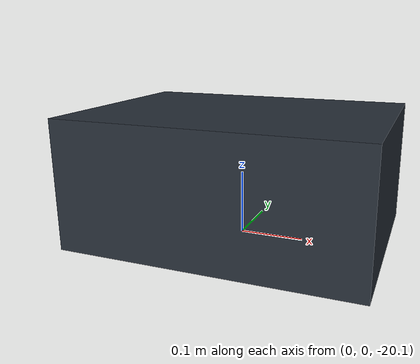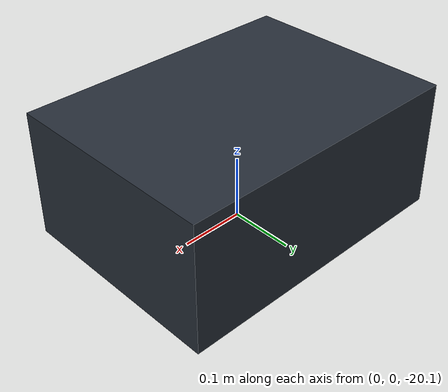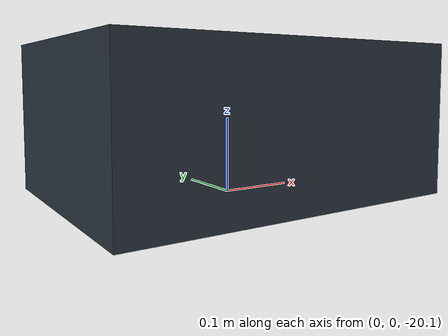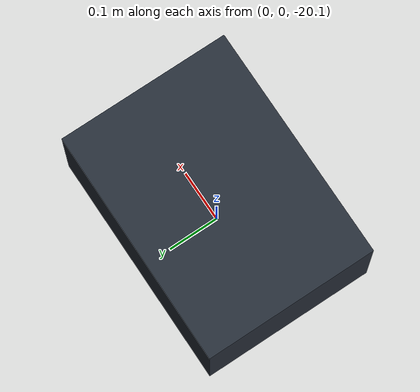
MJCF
<mujoco model="bluerov2_ned">
  <option timestep="0.002" gravity="0 0 9.81" integrator="implicitfast"
          density="0" viscosity="0"/>

  <visual>
    <headlight ambient="0.4 0.4 0.4" diffuse="0.6 0.6 0.6"/>
  </visual>

  <worldbody>
    <body name="base_link" pos="0 0 -20">
      <freejoint name="free"/>
      <inertial pos="0 0 0.02" mass="11.26" diaginertia="0.3 0.63 0.58"/>
      <geom name="frame" type="box" size="0.229 0.1675 0.10"
            rgba="0.15 0.18 0.22 1" contype="0" conaffinity="0"/>
      <geom name="enclosure" type="cylinder" size="0.06 0.16" pos="0 0 -0.06"
            quat="0.7071 0 0.7071 0" rgba="0.85 0.85 0.2 1"
            contype="0" conaffinity="0"/>
      <!-- thruster markers (cosmetic; forces are applied analytically) -->
      <site name="thr1" pos="0.156 0.111 0.072" size="0.02" rgba="0 0.8 0 1"/>
      <site name="thr2" pos="0.156 -0.111 0.072" size="0.02" rgba="0 0.8 0 1"/>
      <site name="thr3" pos="-0.156 0.111 0.072" size="0.02" rgba="0 0.4 0.8 1"/>
      <site name="thr4" pos="-0.156 -0.111 0.072" size="0.02" rgba="0 0.4 0.8 1"/>
      <site name="thr5" pos="0.0 0.1105 -0.005" size="0.02" rgba="0 0.4 0.8 1"/>
      <site name="thr6" pos="0.0 -0.1105 -0.005" size="0.02" rgba="0 0.8 0 1"/>
      <site name="origin_cb" pos="0 0 0" size="0.005" rgba="1 0 0 1"/>
    </body>
  </worldbody>
</mujoco>
